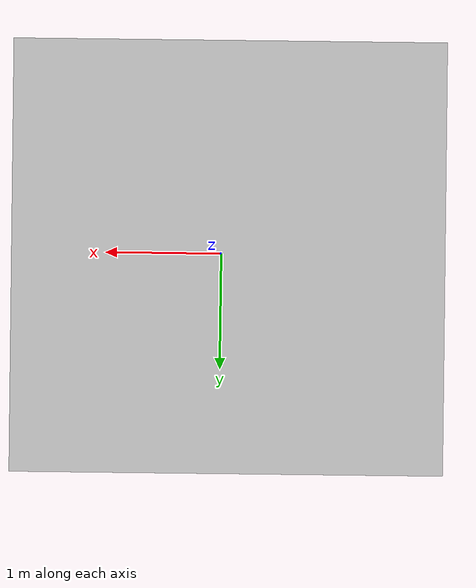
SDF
<?xml version="1.0" ?>
<sdf version="1.4">
  <model name="apriltag cube">
    <link name="link">
        <pose>0 0 1 1.5708 0 0</pose>
      <inertial>
<pose>0.0 0.0 0 0 -0 0</pose>
        <mass>1</mass>
      </inertial>
      <collision name="collision">
        <geometry>
          <mesh>
            <uri>model://apriltag1_emb/meshes/apriltag_mesh6.dae</uri>
            <scale>0.5 0.5 0.5</scale>
          </mesh>
        </geometry>
          <surface>
            <bounce>
              <restitution_coefficient>0.5</restitution_coefficient>
              <threshold>0</threshold>
            </bounce>
            <contact>
              <ode>
                <max_vel>10</max_vel>
              </ode>
            </contact>
          </surface>
      </collision>
      <visual name="visual">
        <geometry>
          <mesh>
            <uri>model://apriltag1_emb/meshes/apriltag_mesh6.dae</uri>
            <scale>1.5 0.5 1.5</scale>
          </mesh>
        </geometry>
      </visual>
    </link>
  </model>
</sdf>
